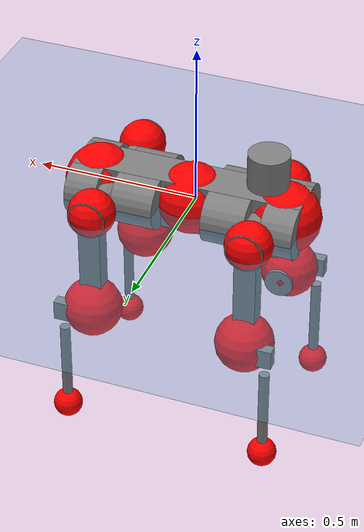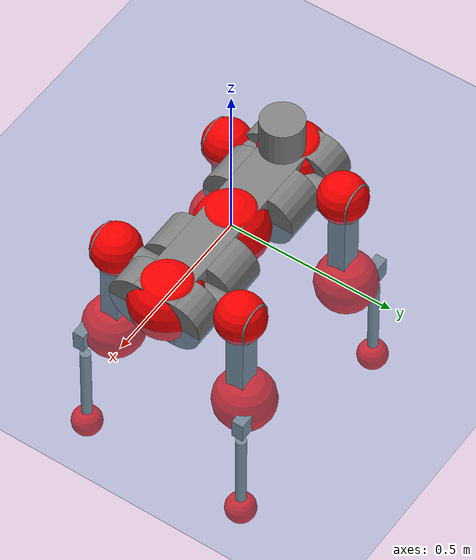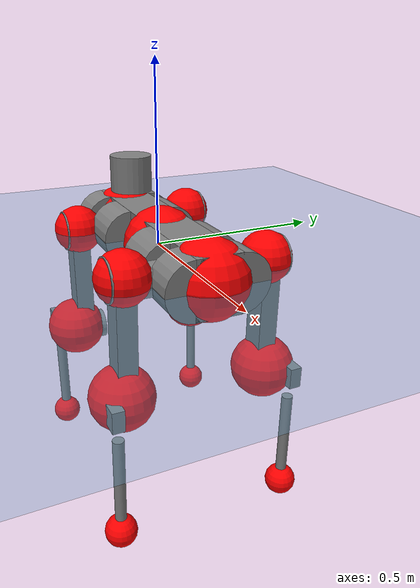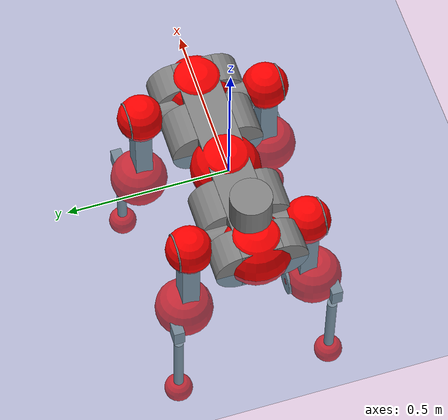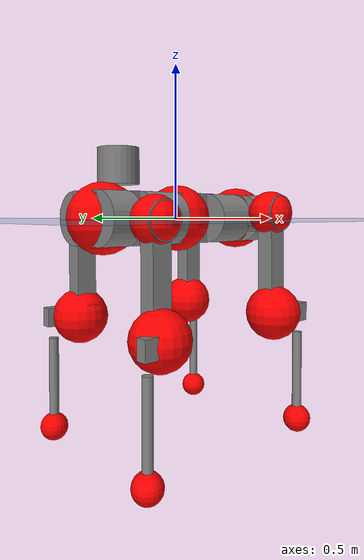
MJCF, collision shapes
<mujoco model="anymal_c">
  <compiler angle="radian" assetdir="assets" balanceinertia="true" inertiafromgeom="false"/>

  <option timestep="0.005" density="1.2" viscosity="2e-05"/>

  <size nkey="1"/>

  <visual>
    <quality shadowsize="8192"/>
    <map shadowclip="0.5"/>
  </visual>

  <default>
    <default class="/">
      <material specular="0" shininess="0.25"/>
      <geom contype="0" conaffinity="0" group="1" solref="-1000 -80"/>
      <site size="0.01 0.005 0.005" group="5"/>
      <general forcelimited="true" forcerange="-80 80" biastype="affine" gainprm="80" biasprm="0 -80 -2"/>
      <default class="anymal_c">
        <joint armature="0.01" damping="0.01" frictionloss="0.1"/>
        <default class="visual">
          <geom type="mesh" group="2"/>
          <default class="visual_zflip"/>
        </default>
        <default class="collision">
          <geom type="cylinder" group="3"/>
          <default class="foot">
            <geom size="0.03 0 0" type="sphere" condim="6" priority="1" friction="0.8 0.02 0.01" solimp="0.015 1 0.03"/>
          </default>
        </default>
      </default>
      <default class="reward_collision_sphere">
        <geom group="5" rgba="1 0 0 1"/>
      </default>
    </default>
  </default>

  <asset>
    <texture type="skybox" colorspace="auto" name="//unnamed_texture_0" builtin="gradient" rgb1="0.95 0.95 0.95" rgb2="0.95 0.95 0.95" width="100" height="600"/>
    <texture type="2d" colorspace="auto" name="texplane" builtin="checker" rgb1="0.345 0.575 0.748" rgb2="0.345 0.575 0.748" markrgb="1 1 1" width="512" height="512"/>
    <texture type="2d" colorspace="linear" name="base" file="base.png"/>
    <texture type="2d" colorspace="linear" name="top_shell" file="top_shell.png"/>
    <texture type="2d" colorspace="linear" name="bottom_shell" file="bottom_shell.png"/>
    <texture type="2d" colorspace="linear" name="remote" file="remote.png"/>
    <texture type="2d" colorspace="linear" name="hatch" file="hatch.png"/>
    <texture type="2d" colorspace="linear" name="handle" file="handle.png"/>
    <texture type="2d" colorspace="linear" name="face" file="face.png"/>
    <texture type="2d" colorspace="linear" name="battery" file="battery.png"/>
    <texture type="2d" colorspace="linear" name="lidar_cage" file="lidar_cage.png"/>
    <texture type="2d" colorspace="linear" name="depth_camera" file="depth_camera.png"/>
    <texture type="2d" colorspace="linear" name="wide_angle_camera" file="wide_angle_camera.png"/>
    <texture type="2d" colorspace="linear" name="lidar" file="lidar.png"/>
    <texture type="2d" colorspace="linear" name="drive" file="drive.png"/>
    <texture type="2d" colorspace="linear" name="hip_l" file="hip_l.png"/>
    <texture type="2d" colorspace="linear" name="shank_l" file="shank_l.png"/>
    <texture type="2d" colorspace="linear" name="foot" file="foot.png"/>
    <texture type="2d" colorspace="linear" name="thigh" file="thigh.png"/>
    <texture type="2d" colorspace="linear" name="shank_r" file="shank_r.png"/>
    <texture type="2d" colorspace="linear" name="hip_r" file="hip_r.png"/>
    <material name="MatPlane" class="/" texture="texplane" texuniform="true" texrepeat="2 2" specular="0.9" shininess="0.5"/>
    <material name="black_plastic" class="/" rgba="0.007 0.007 0.007 1"/>
    <material name="green" class="/" rgba="0.052 0.178 0.033 1"/>
    <material name="red" class="/" rgba="0.178 0.006 0.005 1"/>
    <material name="yellow" class="/" rgba="0.178 0.119 0.006 1"/>
    <material name="lwl" class="/" rgba="0.8 0.8 0.8 1"/>
    <material name="base" class="/" texture="base"/>
    <material name="top_shell" class="/" texture="top_shell"/>
    <material name="bottom_shell" class="/" texture="bottom_shell"/>
    <material name="hip_l" class="/" texture="hip_l"/>
    <material name="thigh" class="/" texture="thigh"/>
    <material name="shank_l" class="/" texture="shank_l"/>
    <material name="foot" class="/" texture="foot"/>
    <material name="hip_r" class="/" texture="hip_r"/>
    <material name="shank" class="/" texture="shank_r"/>
    <material name="hatch" class="/" texture="hatch"/>
    <material name="remote" class="/" texture="remote"/>
    <material name="handle" class="/" texture="handle"/>
    <material name="face" class="/" texture="face"/>
    <material name="depth_camera" class="/" texture="depth_camera"/>
    <material name="wide_angle_camera" class="/" texture="wide_angle_camera"/>
    <material name="battery" class="/" texture="battery"/>
    <material name="lidar_cage" class="/" texture="lidar_cage"/>
    <material name="lidar" class="/" texture="lidar"/>
    <material name="drive" class="/" texture="drive"/>
    <mesh name="base_0" class="/" file="base_0.obj"/>
    <mesh name="base_1" class="/" file="base_1.obj"/>
    <mesh name="base_2" class="/" file="base_2.obj"/>
    <mesh name="base_3" class="/" file="base_3.obj"/>
    <mesh name="base_4" class="/" file="base_4.obj"/>
    <mesh name="base_5" class="/" file="base_5.obj"/>
    <mesh name="top_shell" class="/" file="top_shell.obj"/>
    <mesh name="bottom_shell" class="/" file="bottom_shell.obj"/>
    <mesh name="remote" class="/" file="remote.obj"/>
    <mesh name="handle" class="/" file="handle.obj"/>
    <mesh name="face" class="/" file="face.obj"/>
    <mesh name="wide_angle_camera" class="/" file="wide_angle_camera.obj"/>
    <mesh name="depth_camera" class="/" file="depth_camera.obj"/>
    <mesh name="battery" class="/" file="battery.obj"/>
    <mesh name="lidar_cage" class="/" file="lidar_cage.obj"/>
    <mesh name="lidar" class="/" file="lidar.obj"/>
    <mesh name="drive" class="/" file="drive.obj"/>
    <mesh name="hip_l" class="/" file="hip_l.obj"/>
    <mesh name="thigh" class="/" file="thigh.obj"/>
    <mesh name="shank_l" class="/" file="shank_l.obj"/>
    <mesh name="foot" class="/" file="foot.obj"/>
    <mesh name="hip_r" class="/" file="hip_r.obj"/>
    <mesh name="hatch" class="/" file="hatch.obj"/>
    <mesh name="shank_r" class="/" file="shank_r.obj"/>
  </asset>

  <worldbody>
    <geom name="floor" class="/" size="100 100 0.125" type="plane" group="0" material="MatPlane"/>
    <light name="toplight_shadow" class="/" pos="0 0 5" dir="0.0990148 0.0990148 -0.990148" type="directional" ambient="0.04 0.04 0.04" diffuse="0.55 0.55 0.55" specular="0.12 0.12 0.12"/>
    <light name="toplight_fill" class="/" pos="0 0 5" dir="0.0990148 0.0990148 -0.990148" type="directional" castshadow="false" ambient="0.04 0.04 0.04" diffuse="0.3 0.3 0.3" specular="0.08 0.08 0.08"/>
    <body name="trunk" childclass="anymal_c" pos="0.01003 0.00590004 0.0021389" quat="0.999993 -0.00247724 0.000192606 0.00276211">
      <inertial pos="0.0123248 -0.0020216 0.0558094" quat="0.501992 0.505476 0.491679 0.500749" mass="13.3955" diaginertia="0.071825 0.334645 0.410196"/>
      <joint name="//unnamed_joint_0" type="free" armature="0" damping="0" frictionloss="0"/>
      <geom name="//unnamed_geom_1" class="visual" material="green" mesh="base_0"/>
      <geom name="//unnamed_geom_2" class="visual" material="yellow" mesh="base_1"/>
      <geom name="//unnamed_geom_3" class="visual" material="red" mesh="base_2"/>
      <geom name="//unnamed_geom_4" class="visual" material="black_plastic" mesh="base_3"/>
      <geom name="//unnamed_geom_5" class="visual" material="lwl" mesh="base_4"/>
      <geom name="//unnamed_geom_6" class="visual" material="base" mesh="base_5"/>
      <geom name="trunk_1" class="collision" size="0.261255 0.0630617 0.0810793" type="box"/>
      <geom name="trunk_2" class="collision" size="0.0810793 0.0653139" pos="0.141084 0.0619624 0" quat="0.707107 0 0.707107 0"/>
      <geom name="trunk_3" class="collision" size="0.0810793 0.0653139" pos="-0.141084 0.0619624 0" quat="0.707107 0 0.707107 0"/>
      <geom name="trunk_4" class="collision" size="0.0810793 0.0653139" pos="0.141084 -0.0619624 0" quat="0.707107 0 0.707107 0"/>
      <geom name="trunk_5" class="collision" size="0.0810793 0.0653139" pos="-0.141084 -0.0619624 0" quat="0.707107 0 0.707107 0"/>
      <geom name="//unnamed_geom_12" class="visual" material="top_shell" mesh="top_shell"/>
      <geom name="//unnamed_geom_13" class="visual" material="bottom_shell" mesh="bottom_shell"/>
      <geom name="//unnamed_geom_14" class="visual" material="remote" mesh="remote"/>
      <geom name="//unnamed_geom_15" class="visual" material="handle" mesh="handle"/>
      <geom name="//unnamed_geom_16" class="visual" pos="0.26887 0 0" quat="1 0 0 0" material="face" mesh="face"/>
      <geom name="trunk_6" class="collision" size="0.0495485 0.0630617 0.0810793" pos="0.304546 0 0" type="box"/>
      <geom name="//unnamed_geom_18" class="collision" size="0.0810793 0.0495485" pos="0.304546 0.0619624 0" quat="0.707107 0 0.707107 0"/>
      <geom name="//unnamed_geom_19" class="collision" size="0.0810793 0.0495485" pos="0.304546 -0.0619624 0" quat="0.707107 0 0.707107 0"/>
      <geom name="//unnamed_geom_20" class="visual" pos="0.299476 0 -0.0380822" quat="0.965926 0 0.258819 0" material="depth_camera" mesh="depth_camera"/>
      <geom name="//unnamed_geom_21" class="visual" pos="0.332763 0 0.017497" material="wide_angle_camera" mesh="wide_angle_camera"/>
      <geom name="//unnamed_geom_22" class="visual_zflip" pos="-0.26887 0 0" quat="0 0 0 1" material="face" mesh="face"/>
      <geom name="trunk_7" class="collision" size="0.0495485 0.0630617 0.0810793" pos="-0.304546 0 0" quat="0 0 0 1" type="box"/>
      <geom name="//unnamed_geom_24" class="collision" size="0.0810793 0.0495485" pos="-0.304546 -0.0619624 0" quat="0 -0.707107 0 0.707107"/>
      <geom name="//unnamed_geom_25" class="collision" size="0.0810793 0.0495485" pos="-0.304546 0.0619624 0" quat="0 -0.707107 0 0.707107"/>
      <geom name="//unnamed_geom_26" class="visual" pos="-0.299476 0 -0.0380822" quat="0 -0.258819 0 0.965926" material="depth_camera" mesh="depth_camera"/>
      <geom name="//unnamed_geom_27" class="visual_zflip" pos="-0.332763 0 0.017497" quat="0 0 0 1" material="wide_angle_camera" mesh="wide_angle_camera"/>
      <geom name="//unnamed_geom_28" class="visual" material="battery" mesh="battery"/>
      <geom name="//unnamed_geom_29" class="visual" pos="0 0.0708058 0.0300007" quat="0.683013 -0.183013 0.183013 0.683013" material="depth_camera" mesh="depth_camera"/>
      <geom name="//unnamed_geom_30" class="visual" pos="0 -0.0708058 0.0300007" quat="0.683013 0.183013 0.183013 -0.683013" material="depth_camera" mesh="depth_camera"/>
      <geom name="//unnamed_geom_31" class="visual" pos="-0.236113 0 0.0859072" quat="1 0 0 0" material="lidar_cage" mesh="lidar_cage"/>
      <geom name="trunk_8" class="collision" size="0.0630617 0.0540529" pos="-0.236113 0 0.156035"/>
      <geom name="//unnamed_geom_33" class="visual" pos="-0.236113 9.29207e-05 0.166204" quat="0.707107 0 0 -0.707107" material="lidar" mesh="lidar"/>
      <geom name="//unnamed_geom_34" class="visual" pos="0.194533 0.0921592 -4.89262e-09" quat="0.258819 0.965926 0 0" material="drive" mesh="drive"/>
      <geom name="//unnamed_geom_35" class="visual" pos="0.194533 -0.0921592 4.89262e-09" quat="0.258819 -0.965926 0 0" material="drive" mesh="drive"/>
      <geom name="//unnamed_geom_36" class="visual" pos="-0.194533 0.0921592 4.89262e-09" quat="0 0 0.965926 -0.258819" material="drive" mesh="drive"/>
      <geom name="//unnamed_geom_37" class="visual" pos="-0.194533 -0.0921592 -4.89262e-09" quat="0 0 -0.965926 -0.258819" material="drive" mesh="drive"/>
      <geom name="//unnamed_geom_38" class="visual" pos="0.0752447 0 0.0853228" quat="1 0 0 0" material="hatch" mesh="hatch"/>
      <geom name="//unnamed_geom_39" class="reward_collision_sphere" size="0.108106"/>
      <geom name="//unnamed_geom_40" class="reward_collision_sphere" size="0.108106" pos="0.291897 0 0"/>
      <geom name="//unnamed_geom_41" class="reward_collision_sphere" size="0.108106" pos="-0.291897 0 0"/>
      <site name="imu" pos="0.170119 -0.00160565 0.0575083" size="0.00900881"/>
      <camera name="track" pos="0 -1.77035 0" quat="0.707107 0.707107 0 0" mode="trackcom"/>
      <camera name="ego_camera" pos="0.291897 0 -0.0467522" quat="-0.5 -0.5 0.5 0.5"/>
      <body name="LF_HIP" pos="0.199425 0.0970961 -0.00209765" quat="0.259733 0.965668 0.00489265 -0.000650331">
        <inertial pos="0.0477126 -0.00973625 -0.00578836" quat="-0.129749 0.707484 -0.143446 0.679746" mass="1.79555" diaginertia="0.000596509 0.0026737 0.00610399"/>
        <joint name="LF_HAA" pos="0 0 0" axis="0.999987 -0.00392237 0.00325409" stiffness="0.00579547" range="-0.753895 0.654808" armature="0.00598308" damping="0.0332567" frictionloss="0.0787712"/>
        <geom name="//unnamed_geom_42" class="visual" pos="0 -0.000287811 4.72727e-05" quat="0.258819 -0.965926 0 0" material="hip_l" mesh="hip_l"/>
        <geom name="//unnamed_geom_43" class="visual" pos="0.0388548 -0.0502957 -0.0311361" quat="0.183013 -0.683013 0.683013 0.183013" material="drive" mesh="drive"/>
        <geom name="//unnamed_geom_44" class="collision" size="0.0450441 0.0630617" pos="0.0388548 -0.0105865 -0.0080706" quat="-0.353553 -0.612372 0.612372 -0.353553"/>
        <body name="LF_THIGH" pos="0.0426733 -0.063073 -0.0517287" quat="0.182926 -0.682583 0.683214 0.183949">
          <inertial pos="0.01002 0.00105042 -0.295942" quat="0.992997 0.00278995 -0.0804844 0.0864416" mass="2.28779" diaginertia="0.00345626 0.016342 0.00949046"/>
          <joint name="LF_HFE" pos="0 0 0" axis="0.999878 0.0156062 -0.000569822" range="-2.99055 3.00362" armature="0.00598558" damping="0.0569697" frictionloss="0.0747537"/>
          <geom name="//unnamed_geom_45" class="visual" pos="-0.00470574 -7.41514e-06 0" quat="0.707107 0 0 -0.707107" material="thigh" mesh="thigh"/>
          <geom name="//unnamed_geom_46" class="collision" size="0.0585573 0.0360352" pos="0.0259464 0 0" quat="0.5 0.5 -0.5 -0.5"/>
          <geom name="//unnamed_geom_47" class="collision" size="0.033783 0.0270264 0.127307" pos="0.0194598 0 -0.165169" quat="0.707107 0 0 -0.707107" type="box"/>
          <geom name="//unnamed_geom_48" class="visual" pos="0.0650607 0 -0.333109" quat="1 0 0 0" material="drive" mesh="drive"/>
          <geom name="//unnamed_geom_49" class="collision" size="0.0450441 0.0630617" pos="0.0196544 0 -0.333109" quat="0.707107 0 0.707107 0"/>
          <geom name="//unnamed_geom_50" class="reward_collision_sphere" size="0.0720705" pos="0.0162165 0 0"/>
          <body name="LF_SHANK" pos="0.0627909 -2.65154e-05 -0.332394" quat="0.999997 -0.000732502 -0.00114628 -0.00225838">
            <inertial pos="-0.000969186 -0.0579583 -0.0877223" quat="0.989086 -0.145788 -0.0211389 -0.00279756" mass="0.423888" diaginertia="0.00118106 0.00477517 0.00259462"/>
            <joint name="LF_KFE" pos="0 0 0" axis="1 6.8802e-06 -4.10254e-06" range="-3.17186 3.29748" armature="0.0110137" damping="0.00643158" frictionloss="0.0855769"/>
            <geom name="//unnamed_geom_51" class="visual" pos="-0.00153444 -0.0081817 0" quat="0.707107 0 0 -0.707107" material="shank_l" mesh="shank_l"/>
            <geom name="LF_kfe_act" class="collision" size="0.0540529 0.0180176" pos="0.0129732 0 0" quat="0.5 0.5 -0.5 -0.5"/>
            <geom name="//unnamed_geom_53" class="collision" size="0.0517998 0.0304047 0.0171167" pos="0.0129732 -0.0508968 0" quat="0.5 0.5 -0.5 -0.5" type="box"/>
            <geom name="//unnamed_geom_54" class="visual" pos="0.0084654 -0.0804879 -0.395021" quat="0.382683 0 0 -0.92388" material="foot" mesh="foot"/>
            <geom name="LF_calf" class="collision" size="0.0157654 0.127251" pos="0.00846503 -0.0778513 -0.197511" quat="0.707107 0 0 -0.707107"/>
            <geom name="LF_foot" class="foot" size="0.0272756" pos="0.00846503 -0.0778513 -0.368723" quat="0.707107 0 0 -0.707107"/>
            <geom name="//unnamed_geom_57" class="reward_collision_sphere" size="0.0900881" pos="-0.032433 0 0"/>
            <geom name="//unnamed_geom_58" class="reward_collision_sphere" size="0.0450441" pos="0.00846503 -0.0778513 -0.368723"/>
            <site name="LF_foot" class="foot" pos="0.00846503 -0.0778513 -0.368723" quat="0.707107 0 0 -0.707107" size="0.00900881"/>
          </body>
        </body>
      </body>
      <body name="RF_HIP" pos="0.19595 -0.100015 -0.00163025" quat="0.258688 -0.96596 -0.00118513 0.00110785">
        <inertial pos="0.0296944 0.013003 -0.00952773" quat="0.128261 0.678368 0.123455 0.712829" mass="1.60087" diaginertia="0.000617518 0.00247809 0.00707432"/>
        <joint name="RF_HAA" pos="0 0 0" axis="0.999982 8.97703e-05 -0.00599113" range="-0.575333 0.755291" armature="0.0136739" damping="0.00851538" frictionloss="0.0440121"/>
        <geom name="//unnamed_geom_59" class="visual" pos="0 0.000287808 4.72726e-05" quat="0.258819 0.965926 0 0" material="hip_r" mesh="hip_r"/>
        <geom name="//unnamed_geom_60" class="visual" pos="0.0388548 0.0502957 -0.0311361" quat="0.183013 0.683013 0.683013 -0.183013" material="drive" mesh="drive"/>
        <geom name="//unnamed_geom_61" class="collision" size="0.0450441 0.0630617" pos="0.0388548 0.0105865 -0.0080706" quat="-0.353553 0.612372 0.612372 0.353553"/>
        <body name="RF_THIGH" pos="0.0413062 0.064912 -0.057564" quat="0.186304 0.682328 0.681905 -0.186343">
          <inertial pos="0.0261825 0.0107845 -0.286367" quat="0.992418 -0.00349956 -0.0799389 0.0932929" mass="2.61322" diaginertia="0.00360926 0.0171668 0.0101859"/>
          <joint name="RF_HFE" pos="0 0 0" axis="0.999983 -0.00271195 -0.00514411" stiffness="0.00935429" range="-3.12091 3.17912" armature="0.00927085" damping="0.00980719" frictionloss="0.078503"/>
          <geom name="//unnamed_geom_62" class="visual" pos="-0.00470574 -7.41514e-06 0" quat="0.707107 0 0 -0.707107" material="thigh" mesh="thigh"/>
          <geom name="//unnamed_geom_63" class="collision" size="0.0585573 0.0360352" pos="0.0259464 0 0" quat="0.5 0.5 0.5 0.5"/>
          <geom name="//unnamed_geom_64" class="collision" size="0.033783 0.0270264 0.127307" pos="0.0194598 0 -0.165169" quat="0.707107 0 0 0.707107" type="box"/>
          <geom name="//unnamed_geom_65" class="visual" pos="0.0650607 0 -0.333109" quat="1 0 0 0" material="drive" mesh="drive"/>
          <geom name="//unnamed_geom_66" class="collision" size="0.0450441 0.0630617" pos="0.0196544 0 -0.333109" quat="0.707107 0 0.707107 0"/>
          <geom name="//unnamed_geom_67" class="reward_collision_sphere" size="0.0720705" pos="0.0162165 0 0"/>
          <body name="RF_SHANK" pos="0.05937 0.000770578 -0.332068" quat="1 0.000354509 0.000246571 0.000106119">
            <inertial pos="-0.000167275 0.0539291 -0.0934566" quat="0.992399 0.120415 -0.00273507 0.0252217" mass="0.386241" diaginertia="0.000949218 0.00489344 0.00225723"/>
            <joint name="RF_KFE" pos="0 0 0" axis="0.999359 -0.0354802 -0.00486387" stiffness="0.0215386" range="-3.08898 3.11377" armature="0.00978041" damping="0" frictionloss="0.0882411"/>
            <geom name="//unnamed_geom_68" class="visual" pos="-0.00153443 0.00818168 0" quat="0.707107 0 0 0.707107" material="shank" mesh="shank_r"/>
            <geom name="RF_kfe_act" class="collision" size="0.0540529 0.0180176" pos="0.0129732 0 0" quat="0.5 0.5 0.5 0.5"/>
            <geom name="//unnamed_geom_70" class="collision" size="0.0517998 0.0304047 0.0171167" pos="0.0129732 0.0508968 0" quat="0.5 0.5 0.5 0.5" type="box"/>
            <geom name="//unnamed_geom_71" class="visual" pos="0.00846465 0.0804879 -0.395021" quat="0.382683 0 0 0.92388" material="foot" mesh="foot"/>
            <geom name="RF_calf" class="collision" size="0.0157654 0.127251" pos="0.00846503 0.0778513 -0.197511" quat="0.707107 0 0 0.707107"/>
            <geom name="RF_foot" class="foot" size="0.0326812" pos="0.00846503 0.0778513 -0.368723" quat="0.707107 0 0 0.707107"/>
            <geom name="//unnamed_geom_74" class="reward_collision_sphere" size="0.0900881" pos="-0.032433 0 0"/>
            <geom name="//unnamed_geom_75" class="reward_collision_sphere" size="0.0450441" pos="0.00846503 0.0778513 -0.368723"/>
            <site name="RF_foot" class="foot" pos="0.00846503 0.0778513 -0.368723" quat="0.707107 0 0 0.707107" size="0.00900881"/>
          </body>
        </body>
      </body>
      <body name="LH_HIP" pos="-0.194646 0.0929092 -0.00439402" quat="-0.00149629 -0.00327093 0.96711 -0.254333">
        <inertial pos="0.0267455 0.0133124 -0.00827627" quat="0.134634 0.680015 0.128032 0.709268" mass="2.07571" diaginertia="0.000684573 0.00251534 0.00737939"/>
        <joint name="LH_HAA" pos="0 0 0" axis="1 -0.000155462 0.000639167" range="-0.501194 0.744091" armature="0.00870727" damping="0.00656281" frictionloss="0.0808785"/>
        <geom name="//unnamed_geom_76" class="visual" pos="0 0.000287808 4.72726e-05" quat="-0.258819 -0.965926 0 0" material="hip_r" mesh="hip_r"/>
        <geom name="//unnamed_geom_77" class="visual" pos="0.0388548 0.0502957 -0.0311361" quat="0.183013 0.683013 0.683013 -0.183013" material="drive" mesh="drive"/>
        <geom name="//unnamed_geom_78" class="collision" size="0.0450441 0.0630617" pos="0.0388548 0.0105865 -0.0080706" quat="-0.353553 0.612372 0.612372 0.353553"/>
        <body name="LH_THIGH" pos="0.0482315 0.0617118 -0.0553903" quat="0.184397 0.679537 0.685785 -0.184193">
          <inertial pos="0.0185002 -0.000452034 -0.287578" quat="0.995964 -0.0286585 -0.05781 0.0623821" mass="2.46845" diaginertia="0.00344218 0.0176952 0.00897582"/>
          <joint name="LH_HFE" pos="0 0 0" axis="0.99981 -0.00433487 0.018986" stiffness="0.0050527" range="-3.16084 3.1082" armature="0.0112026" damping="0.0570473" frictionloss="0.0974931"/>
          <geom name="//unnamed_geom_79" class="visual" pos="-0.00470574 -7.41514e-06 0" quat="0.707107 0 0 -0.707107" material="thigh" mesh="thigh"/>
          <geom name="//unnamed_geom_80" class="collision" size="0.0585573 0.0360352" pos="0.0259464 0 0" quat="0.5 0.5 -0.5 -0.5"/>
          <geom name="//unnamed_geom_81" class="collision" size="0.033783 0.0270264 0.127307" pos="0.0194598 0 -0.165169" quat="0.707107 0 0 -0.707107" type="box"/>
          <geom name="//unnamed_geom_82" class="visual" pos="0.0650607 0 -0.333109" quat="1 0 0 0" material="drive" mesh="drive"/>
          <geom name="//unnamed_geom_83" class="collision" size="0.0450441 0.0630617" pos="0.0196544 0 -0.333109" quat="0.707107 0 0.707107 0"/>
          <geom name="//unnamed_geom_84" class="reward_collision_sphere" size="0.0720705" pos="0.0162165 0 0"/>
          <body name="LH_SHANK" pos="0.0639567 0.000207816 -0.336574" quat="1 0.00024638 0.000183739 -4.48194e-05">
            <inertial pos="0.00368063 0.0537384 -0.0986049" quat="0.992845 0.116738 -0.00123649 0.0250822" mass="0.427829" diaginertia="0.00117118 0.00520984 0.00242534"/>
            <joint name="LH_KFE" pos="0 0 0" axis="0.999977 0.00637166 0.00221418" range="-3.13236 3.14215" armature="0.0106111" damping="0.0493522" frictionloss="0.0822595"/>
            <geom name="//unnamed_geom_85" class="visual" pos="-0.00153443 0.00818168 0" quat="-0.707107 0 0 -0.707107" material="shank" mesh="shank_r"/>
            <geom name="LH_kfe_act" class="collision" size="0.0540529 0.0180176" pos="0.0129732 0 0" quat="0.5 0.5 -0.5 -0.5"/>
            <geom name="//unnamed_geom_87" class="collision" size="0.0517998 0.0304047 0.0171167" pos="0.0129732 0.0508968 0" quat="0.5 0.5 -0.5 -0.5" type="box"/>
            <geom name="//unnamed_geom_88" class="visual" pos="0.00846465 0.0804879 -0.395021" quat="-0.382683 0 0 -0.92388" material="foot" mesh="foot"/>
            <geom name="LH_calf" class="collision" size="0.0157654 0.127251" pos="0.00846503 0.0778513 -0.197511" quat="0.707107 0 0 -0.707107"/>
            <geom name="LH_foot" class="foot" size="0.0212675" pos="0.00846503 0.0778513 -0.368723" quat="0.707107 0 0 -0.707107"/>
            <geom name="//unnamed_geom_91" class="reward_collision_sphere" size="0.0900881" pos="-0.032433 0 0"/>
            <geom name="//unnamed_geom_92" class="reward_collision_sphere" size="0.0450441" pos="0.00846503 0.0778513 -0.368723"/>
            <site name="LH_foot" class="foot" pos="0.00846503 0.0778513 -0.368723" quat="0.707107 0 0 -0.707107" size="0.00900881"/>
          </body>
        </body>
      </body>
      <body name="RH_HIP" pos="-0.198231 -0.0824722 -0.00733302" quat="0.000550317 -0.000938977 -0.965184 -0.26157">
        <inertial pos="0.0369652 -0.0207177 -0.0102894" quat="-0.171286 0.697682 -0.135125 0.68238" mass="1.97702" diaginertia="0.000622421 0.00245271 0.00722562"/>
        <joint name="RH_HAA" pos="0 0 0" axis="0.999998 0.00103575 -0.00158245" range="-0.70885 0.524626" armature="0.00410527" damping="0" frictionloss="0.127589"/>
        <geom name="//unnamed_geom_93" class="visual" pos="0 -0.000287811 4.72727e-05" quat="-0.258819 0.965926 0 0" material="hip_l" mesh="hip_l"/>
        <geom name="//unnamed_geom_94" class="visual" pos="0.0388548 -0.0502957 -0.0311361" quat="-0.183013 0.683013 -0.683013 -0.183013" material="drive" mesh="drive"/>
        <geom name="//unnamed_geom_95" class="collision" size="0.0450441 0.0630617" pos="0.0388548 -0.0105865 -0.0080706" quat="0.353553 0.612372 -0.612372 0.353553"/>
        <body name="RH_THIGH" pos="0.0418698 -0.0651488 -0.0412849" quat="-0.183581 0.683718 -0.682007 -0.18356">
          <inertial pos="0.021155 0.00328793 -0.285131" quat="0.99366 -0.00660528 -0.078859 0.0798531" mass="2.39201" diaginertia="0.00366548 0.016396 0.010397"/>
          <joint name="RH_HFE" pos="0 0 0" axis="0.999997 -0.00217581 0.00100749" stiffness="0.0277648" range="-2.95893 3.04574" armature="0.00731649" damping="0.00404739" frictionloss="0.0927123"/>
          <geom name="//unnamed_geom_96" class="visual" pos="-0.00470574 -7.41514e-06 0" quat="0.707107 0 0 -0.707107" material="thigh" mesh="thigh"/>
          <geom name="//unnamed_geom_97" class="collision" size="0.0585573 0.0360352" pos="0.0259464 0 0" quat="0.5 0.5 0.5 0.5"/>
          <geom name="//unnamed_geom_98" class="collision" size="0.033783 0.0270264 0.127307" pos="0.0194598 0 -0.165169" quat="0.707107 0 0 0.707107" type="box"/>
          <geom name="//unnamed_geom_99" class="visual" pos="0.0650607 0 -0.333109" quat="1 0 0 0" material="drive" mesh="drive"/>
          <geom name="//unnamed_geom_100" class="collision" size="0.0450441 0.0630617" pos="0.0196544 0 -0.333109" quat="0.707107 0 0.707107 0"/>
          <geom name="//unnamed_geom_101" class="reward_collision_sphere" size="0.0720705" pos="0.0162165 0 0"/>
          <body name="RH_SHANK" pos="0.0771954 -0.00653225 -0.329553" quat="1 -0.000174615 8.91085e-05 0.000207599">
            <inertial pos="-0.00779731 -0.0542829 -0.0983579" quat="0.993824 -0.107408 -0.00729115 -0.0268993" mass="0.419741" diaginertia="0.00125213 0.00611527 0.00257002"/>
            <joint name="RH_KFE" pos="0 0 0" axis="1 0.000406781 -0.000524115" range="-3.26455 2.90708" armature="0.0124873" damping="0.0117831" frictionloss="0.0867488"/>
            <geom name="//unnamed_geom_102" class="visual" pos="-0.00153444 -0.0081817 0" quat="0.707107 0 0 -0.707107" material="shank_l" mesh="shank_l"/>
            <geom name="RH_kfe_act" class="collision" size="0.0540529 0.0180176" pos="0.0129732 0 0" quat="0.5 0.5 0.5 0.5"/>
            <geom name="//unnamed_geom_104" class="collision" size="0.0517998 0.0304047 0.0171167" pos="0.0129732 -0.0508968 0" quat="0.5 0.5 0.5 0.5" type="box"/>
            <geom name="//unnamed_geom_105" class="visual" pos="0.0084654 -0.0804879 -0.395021" quat="0.382683 0 0 -0.92388" material="foot" mesh="foot"/>
            <geom name="RH_calf" class="collision" size="0.0157654 0.127251" pos="0.00846503 -0.0778513 -0.197511" quat="0.707107 0 0 0.707107"/>
            <geom name="RH_foot" class="foot" size="0.0293595" pos="0.00846503 -0.0778513 -0.368723" quat="0.707107 0 0 0.707107"/>
            <geom name="//unnamed_geom_108" class="reward_collision_sphere" size="0.0900881" pos="-0.032433 0 0"/>
            <geom name="//unnamed_geom_109" class="reward_collision_sphere" size="0.0450441" pos="0.00846503 -0.0778513 -0.368723"/>
            <site name="RH_foot" class="foot" pos="0.00846503 -0.0778513 -0.368723" quat="0.707107 0 0 0.707107" size="0.00900881"/>
          </body>
        </body>
      </body>
    </body>
  </worldbody>

  <contact>
    <pair class="/" geom1="floor" geom2="LF_foot" name="//unnamed_contact_0"/>
    <pair class="/" geom1="floor" geom2="RF_foot" name="//unnamed_contact_1"/>
    <pair class="/" geom1="floor" geom2="LH_foot" name="//unnamed_contact_2"/>
    <pair class="/" geom1="floor" geom2="RH_foot" name="//unnamed_contact_3"/>
  </contact>

  <actuator>
    <general name="LF_HAA" class="/" joint="LF_HAA" forcerange="-69.7521 69.7521" gainprm="70.2689" biasprm="0 -70.2689 -2.00862"/>
    <general name="LF_HFE" class="/" joint="LF_HFE" forcerange="-82.1767 82.1767" gainprm="70.2689" biasprm="0 -70.2689 -2.00862"/>
    <general name="LF_KFE" class="/" joint="LF_KFE" forcerange="-72.4233 72.4233" gainprm="70.2689" biasprm="0 -70.2689 -2.00862"/>
    <general name="RF_HAA" class="/" joint="RF_HAA" forcerange="-42.241 42.241" gainprm="70.2689" biasprm="0 -70.2689 -2.00862"/>
    <general name="RF_HFE" class="/" joint="RF_HFE" forcerange="-76.5113 76.5113" gainprm="70.2689" biasprm="0 -70.2689 -2.00862"/>
    <general name="RF_KFE" class="/" joint="RF_KFE" forcerange="-89.7286 89.7286" gainprm="70.2689" biasprm="0 -70.2689 -2.00862"/>
    <general name="LH_HAA" class="/" joint="LH_HAA" forcerange="-69.6103 69.6103" gainprm="70.2689" biasprm="0 -70.2689 -2.00862"/>
    <general name="LH_HFE" class="/" joint="LH_HFE" forcerange="-69.7472 69.7472" gainprm="70.2689" biasprm="0 -70.2689 -2.00862"/>
    <general name="LH_KFE" class="/" joint="LH_KFE" forcerange="-78.121 78.121" gainprm="70.2689" biasprm="0 -70.2689 -2.00862"/>
    <general name="RH_HAA" class="/" joint="RH_HAA" forcerange="-75.8381 75.8381" gainprm="70.2689" biasprm="0 -70.2689 -2.00862"/>
    <general name="RH_HFE" class="/" joint="RH_HFE" forcerange="-75.6311 75.6311" gainprm="70.2689" biasprm="0 -70.2689 -2.00862"/>
    <general name="RH_KFE" class="/" joint="RH_KFE" forcerange="-47.6452 47.6452" gainprm="70.2689" biasprm="0 -70.2689 -2.00862"/>
  </actuator>

  <sensor>
    <gyro site="imu" name="imu_angular_velocity"/>
    <velocimeter site="imu" name="imu_linear_velocity"/>
    <framelinvel objtype="site" objname="LF_foot" name="LF_foot_global_linear_velocity"/>
    <framelinvel objtype="site" objname="RF_foot" name="RF_foot_global_linear_velocity"/>
    <framelinvel objtype="site" objname="LH_foot" name="LH_foot_global_linear_velocity"/>
    <framelinvel objtype="site" objname="RH_foot" name="RH_foot_global_linear_velocity"/>
  </sensor>

  <keyframe>
    <key name="home" qpos="0 0 0.55 1 0 0 0 0 0.4 -0.8 0 -0.4 0.8 0 -0.4 0.8 0 0.4 -0.8"/>
  </keyframe>
</mujoco>
